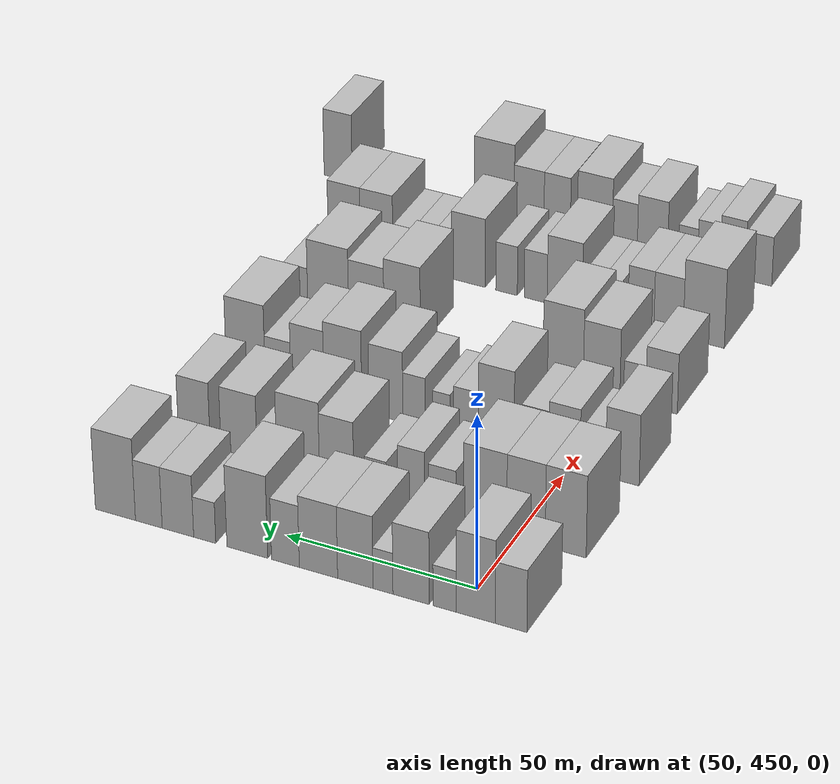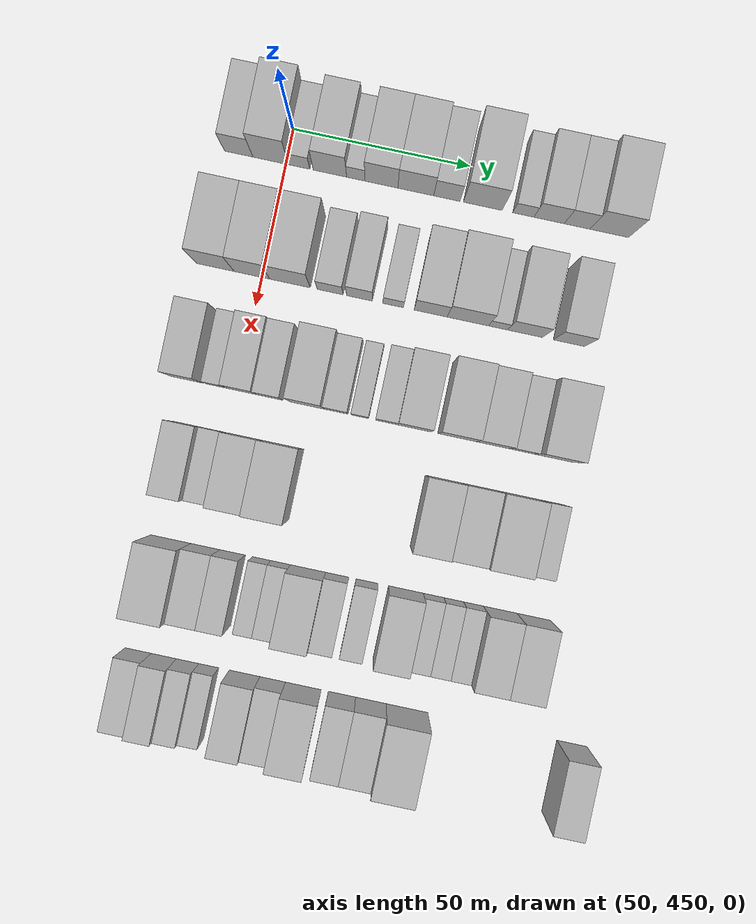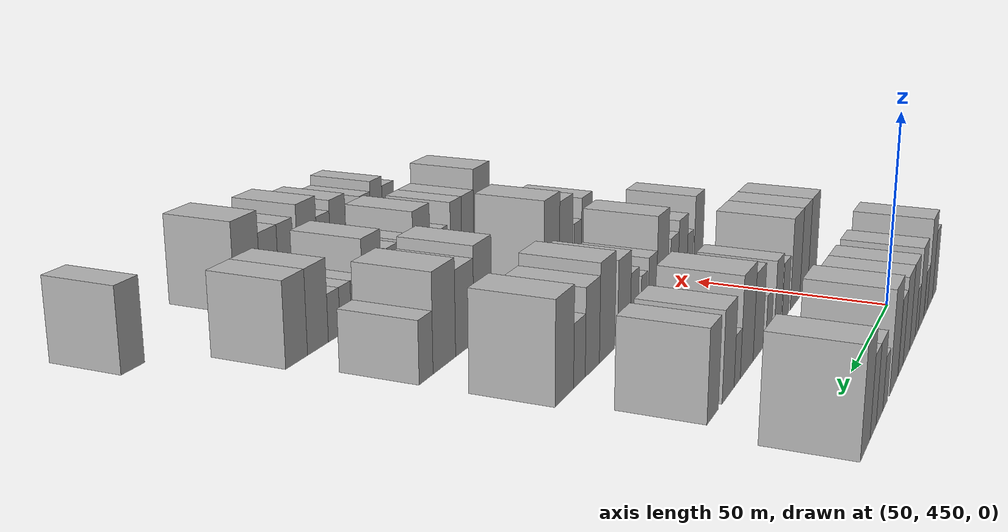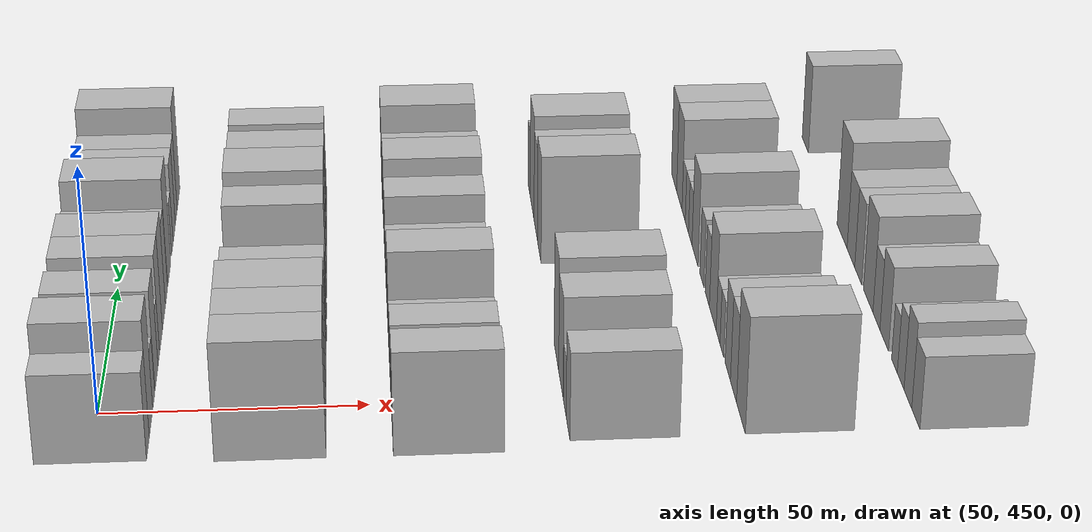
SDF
<sdf version="1.6">
 <world name="default">
  <model name="building_109">
   <static>1</static>
   <pose>50.0000 436.7194 0 0.000000 0.000000 0.000000</pose>
   <link name="link">
    <pose>0 0 9.00 0 0 0</pose>
    <collision name="collision"><geometry><box><size>20.0000 8.0384 18.0000</size></box></geometry></collision>
    <visual name="visual">
     <cast_shadows>0</cast_shadows>
     <geometry><box><size>20.0000 8.0384 18.0000</size></box></geometry>
     <material>
      <script>
       <uri>model://HANNAS_wall/materials/scripts</uri>
       <uri>model://HANNAS_wall/materials/textures</uri>
       <name>vrc/HANNAS_wall</name>
      </script>
     </material>
    </visual>
   </link>
  </model>
  <model name="building_110">
   <static>1</static>
   <pose>50.0000 445.7881 0 0.000000 0.000000 0.000000</pose>
   <link name="link">
    <pose>0 0 12.00 0 0 0</pose>
    <collision name="collision"><geometry><box><size>20.0000 10.0990 24.0000</size></box></geometry></collision>
    <visual name="visual">
     <cast_shadows>0</cast_shadows>
     <geometry><box><size>20.0000 10.0990 24.0000</size></box></geometry>
     <material>
      <script>
       <uri>model://HANNAS_wall/materials/scripts</uri>
       <uri>model://HANNAS_wall/materials/textures</uri>
       <name>vrc/HANNAS_wall</name>
      </script>
     </material>
    </visual>
   </link>
  </model>
  <model name="building_111">
   <static>1</static>
   <pose>50.0000 453.8127 0 0.000000 0.000000 0.000000</pose>
   <link name="link">
    <pose>0 0 6.00 0 0 0</pose>
    <collision name="collision"><geometry><box><size>20.0000 5.9501 12.0000</size></box></geometry></collision>
    <visual name="visual">
     <cast_shadows>0</cast_shadows>
     <geometry><box><size>20.0000 5.9501 12.0000</size></box></geometry>
     <material>
      <script>
       <uri>model://HANNAS_wall/materials/scripts</uri>
       <uri>model://HANNAS_wall/materials/textures</uri>
       <name>vrc/HANNAS_wall</name>
      </script>
     </material>
    </visual>
   </link>
  </model>
  <model name="building_112">
   <static>1</static>
   <pose>50.0000 462.4887 0 0.000000 0.000000 0.000000</pose>
   <link name="link">
    <pose>0 0 10.50 0 0 0</pose>
    <collision name="collision"><geometry><box><size>20.0000 9.4019 21.0000</size></box></geometry></collision>
    <visual name="visual">
     <cast_shadows>0</cast_shadows>
     <geometry><box><size>20.0000 9.4019 21.0000</size></box></geometry>
     <material>
      <script>
       <uri>model://HANNAS_wall/materials/scripts</uri>
       <uri>model://HANNAS_wall/materials/textures</uri>
       <name>vrc/HANNAS_wall</name>
      </script>
     </material>
    </visual>
   </link>
  </model>
  <model name="building_113">
   <static>1</static>
   <pose>50.0000 469.7795 0 0.000000 0.000000 0.000000</pose>
   <link name="link">
    <pose>0 0 6.00 0 0 0</pose>
    <collision name="collision"><geometry><box><size>20.0000 5.1796 12.0000</size></box></geometry></collision>
    <visual name="visual">
     <cast_shadows>0</cast_shadows>
     <geometry><box><size>20.0000 5.1796 12.0000</size></box></geometry>
     <material>
      <script>
       <uri>model://HANNAS_wall/materials/scripts</uri>
       <uri>model://HANNAS_wall/materials/textures</uri>
       <name>vrc/HANNAS_wall</name>
      </script>
     </material>
    </visual>
   </link>
  </model>
  <model name="building_114">
   <static>1</static>
   <pose>50.0000 477.0239 0 0.000000 0.000000 0.000000</pose>
   <link name="link">
    <pose>0 0 10.50 0 0 0</pose>
    <collision name="collision"><geometry><box><size>20.0000 9.3094 21.0000</size></box></geometry></collision>
    <visual name="visual">
     <cast_shadows>0</cast_shadows>
     <geometry><box><size>20.0000 9.3094 21.0000</size></box></geometry>
     <material>
      <script>
       <uri>model://HANNAS_wall/materials/scripts</uri>
       <uri>model://HANNAS_wall/materials/textures</uri>
       <name>vrc/HANNAS_wall</name>
      </script>
     </material>
    </visual>
   </link>
  </model>
  <model name="building_115">
   <static>1</static>
   <pose>50.0000 486.7383 0 0.000000 0.000000 0.000000</pose>
   <link name="link">
    <pose>0 0 10.50 0 0 0</pose>
    <collision name="collision"><geometry><box><size>20.0000 10.1193 21.0000</size></box></geometry></collision>
    <visual name="visual">
     <cast_shadows>0</cast_shadows>
     <geometry><box><size>20.0000 10.1193 21.0000</size></box></geometry>
     <material>
      <script>
       <uri>model://HANNAS_wall/materials/scripts</uri>
       <uri>model://HANNAS_wall/materials/textures</uri>
       <name>vrc/HANNAS_wall</name>
      </script>
     </material>
    </visual>
   </link>
  </model>
  <model name="building_116">
   <static>1</static>
   <pose>50.0000 495.4894 0 0.000000 0.000000 0.000000</pose>
   <link name="link">
    <pose>0 0 9.00 0 0 0</pose>
    <collision name="collision"><geometry><box><size>20.0000 7.3830 18.0000</size></box></geometry></collision>
    <visual name="visual">
     <cast_shadows>0</cast_shadows>
     <geometry><box><size>20.0000 7.3830 18.0000</size></box></geometry>
     <material>
      <script>
       <uri>model://HANNAS_wall/materials/scripts</uri>
       <uri>model://HANNAS_wall/materials/textures</uri>
       <name>vrc/HANNAS_wall</name>
      </script>
     </material>
    </visual>
   </link>
  </model>
  <model name="building_117">
   <static>1</static>
   <pose>50.0000 505.6539 0 0.000000 0.000000 0.000000</pose>
   <link name="link">
    <pose>0 0 12.00 0 0 0</pose>
    <collision name="collision"><geometry><box><size>20.0000 10.9459 24.0000</size></box></geometry></collision>
    <visual name="visual">
     <cast_shadows>0</cast_shadows>
     <geometry><box><size>20.0000 10.9459 24.0000</size></box></geometry>
     <material>
      <script>
       <uri>model://HANNAS_wall/materials/scripts</uri>
       <uri>model://HANNAS_wall/materials/textures</uri>
       <name>vrc/HANNAS_wall</name>
      </script>
     </material>
    </visual>
   </link>
  </model>
  <model name="building_118">
   <static>1</static>
   <pose>50.0000 517.1136 0 0.000000 0.000000 0.000000</pose>
   <link name="link">
    <pose>0 0 6.00 0 0 0</pose>
    <collision name="collision"><geometry><box><size>20.0000 5.9734 12.0000</size></box></geometry></collision>
    <visual name="visual">
     <cast_shadows>0</cast_shadows>
     <geometry><box><size>20.0000 5.9734 12.0000</size></box></geometry>
     <material>
      <script>
       <uri>model://HANNAS_wall/materials/scripts</uri>
       <uri>model://HANNAS_wall/materials/textures</uri>
       <name>vrc/HANNAS_wall</name>
      </script>
     </material>
    </visual>
   </link>
  </model>
  <model name="building_119">
   <static>1</static>
   <pose>50.0000 524.3731 0 0.000000 0.000000 0.000000</pose>
   <link name="link">
    <pose>0 0 9.00 0 0 0</pose>
    <collision name="collision"><geometry><box><size>20.0000 8.5457 18.0000</size></box></geometry></collision>
    <visual name="visual">
     <cast_shadows>0</cast_shadows>
     <geometry><box><size>20.0000 8.5457 18.0000</size></box></geometry>
     <material>
      <script>
       <uri>model://HANNAS_wall/materials/scripts</uri>
       <uri>model://HANNAS_wall/materials/textures</uri>
       <name>vrc/HANNAS_wall</name>
      </script>
     </material>
    </visual>
   </link>
  </model>
  <model name="building_120">
   <static>1</static>
   <pose>50.0000 532.2877 0 0.000000 0.000000 0.000000</pose>
   <link name="link">
    <pose>0 0 9.00 0 0 0</pose>
    <collision name="collision"><geometry><box><size>20.0000 7.2835 18.0000</size></box></geometry></collision>
    <visual name="visual">
     <cast_shadows>0</cast_shadows>
     <geometry><box><size>20.0000 7.2835 18.0000</size></box></geometry>
     <material>
      <script>
       <uri>model://HANNAS_wall/materials/scripts</uri>
       <uri>model://HANNAS_wall/materials/textures</uri>
       <name>vrc/HANNAS_wall</name>
      </script>
     </material>
    </visual>
   </link>
  </model>
  <model name="building_121">
   <static>1</static>
   <pose>50.0000 541.4183 0 0.000000 0.000000 0.000000</pose>
   <link name="link">
    <pose>0 0 12.00 0 0 0</pose>
    <collision name="collision"><geometry><box><size>20.0000 10.9776 24.0000</size></box></geometry></collision>
    <visual name="visual">
     <cast_shadows>0</cast_shadows>
     <geometry><box><size>20.0000 10.9776 24.0000</size></box></geometry>
     <material>
      <script>
       <uri>model://HANNAS_wall/materials/scripts</uri>
       <uri>model://HANNAS_wall/materials/textures</uri>
       <name>vrc/HANNAS_wall</name>
      </script>
     </material>
    </visual>
   </link>
  </model>
  <model name="building_231">
   <static>1</static>
   <pose>82.0000 436.9784 0 0.000000 0.000000 0.000000</pose>
   <link name="link">
    <pose>0 0 12.00 0 0 0</pose>
    <collision name="collision"><geometry><box><size>20.0000 10.6293 24.0000</size></box></geometry></collision>
    <visual name="visual">
     <cast_shadows>0</cast_shadows>
     <geometry><box><size>20.0000 10.6293 24.0000</size></box></geometry>
     <material>
      <script>
       <uri>model://HANNAS_wall/materials/scripts</uri>
       <uri>model://HANNAS_wall/materials/textures</uri>
       <name>vrc/HANNAS_wall</name>
      </script>
     </material>
    </visual>
   </link>
  </model>
  <model name="building_232">
   <static>1</static>
   <pose>82.0000 447.3363 0 0.000000 0.000000 0.000000</pose>
   <link name="link">
    <pose>0 0 12.00 0 0 0</pose>
    <collision name="collision"><geometry><box><size>20.0000 10.0864 24.0000</size></box></geometry></collision>
    <visual name="visual">
     <cast_shadows>0</cast_shadows>
     <geometry><box><size>20.0000 10.0864 24.0000</size></box></geometry>
     <material>
      <script>
       <uri>model://HANNAS_wall/materials/scripts</uri>
       <uri>model://HANNAS_wall/materials/textures</uri>
       <name>vrc/HANNAS_wall</name>
      </script>
     </material>
    </visual>
   </link>
  </model>
  <model name="building_233">
   <static>1</static>
   <pose>82.0000 458.0966 0 0.000000 0.000000 0.000000</pose>
   <link name="link">
    <pose>0 0 12.00 0 0 0</pose>
    <collision name="collision"><geometry><box><size>20.0000 11.4340 24.0000</size></box></geometry></collision>
    <visual name="visual">
     <cast_shadows>0</cast_shadows>
     <geometry><box><size>20.0000 11.4340 24.0000</size></box></geometry>
     <material>
      <script>
       <uri>model://HANNAS_wall/materials/scripts</uri>
       <uri>model://HANNAS_wall/materials/textures</uri>
       <name>vrc/HANNAS_wall</name>
      </script>
     </material>
    </visual>
   </link>
  </model>
  <model name="building_234">
   <static>1</static>
   <pose>82.0000 469.4426 0 0.000000 0.000000 0.000000</pose>
   <link name="link">
    <pose>0 0 7.50 0 0 0</pose>
    <collision name="collision"><geometry><box><size>20.0000 7.2582 15.0000</size></box></geometry></collision>
    <visual name="visual">
     <cast_shadows>0</cast_shadows>
     <geometry><box><size>20.0000 7.2582 15.0000</size></box></geometry>
     <material>
      <script>
       <uri>model://HANNAS_wall/materials/scripts</uri>
       <uri>model://HANNAS_wall/materials/textures</uri>
       <name>vrc/HANNAS_wall</name>
      </script>
     </material>
    </visual>
   </link>
  </model>
  <model name="building_235">
   <static>1</static>
   <pose>82.0000 477.6923 0 0.000000 0.000000 0.000000</pose>
   <link name="link">
    <pose>0 0 9.00 0 0 0</pose>
    <collision name="collision"><geometry><box><size>20.0000 7.2412 18.0000</size></box></geometry></collision>
    <visual name="visual">
     <cast_shadows>0</cast_shadows>
     <geometry><box><size>20.0000 7.2412 18.0000</size></box></geometry>
     <material>
      <script>
       <uri>model://HANNAS_wall/materials/scripts</uri>
       <uri>model://HANNAS_wall/materials/textures</uri>
       <name>vrc/HANNAS_wall</name>
      </script>
     </material>
    </visual>
   </link>
  </model>
  <model name="building_236">
   <static>1</static>
   <pose>82.0000 487.2114 0 0.000000 0.000000 0.000000</pose>
   <link name="link">
    <pose>0 0 6.00 0 0 0</pose>
    <collision name="collision"><geometry><box><size>20.0000 5.7970 12.0000</size></box></geometry></collision>
    <visual name="visual">
     <cast_shadows>0</cast_shadows>
     <geometry><box><size>20.0000 5.7970 12.0000</size></box></geometry>
     <material>
      <script>
       <uri>model://HANNAS_wall/materials/scripts</uri>
       <uri>model://HANNAS_wall/materials/textures</uri>
       <name>vrc/HANNAS_wall</name>
      </script>
     </material>
    </visual>
   </link>
  </model>
  <model name="building_237">
   <static>1</static>
   <pose>82.0000 497.7575 0 0.000000 0.000000 0.000000</pose>
   <link name="link">
    <pose>0 0 10.50 0 0 0</pose>
    <collision name="collision"><geometry><box><size>20.0000 9.2953 21.0000</size></box></geometry></collision>
    <visual name="visual">
     <cast_shadows>0</cast_shadows>
     <geometry><box><size>20.0000 9.2953 21.0000</size></box></geometry>
     <material>
      <script>
       <uri>model://HANNAS_wall/materials/scripts</uri>
       <uri>model://HANNAS_wall/materials/textures</uri>
       <name>vrc/HANNAS_wall</name>
      </script>
     </material>
    </visual>
   </link>
  </model>
  <model name="building_238">
   <static>1</static>
   <pose>82.0000 508.2361 0 0.000000 0.000000 0.000000</pose>
   <link name="link">
    <pose>0 0 12.00 0 0 0</pose>
    <collision name="collision"><geometry><box><size>20.0000 11.6618 24.0000</size></box></geometry></collision>
    <visual name="visual">
     <cast_shadows>0</cast_shadows>
     <geometry><box><size>20.0000 11.6618 24.0000</size></box></geometry>
     <material>
      <script>
       <uri>model://HANNAS_wall/materials/scripts</uri>
       <uri>model://HANNAS_wall/materials/textures</uri>
       <name>vrc/HANNAS_wall</name>
      </script>
     </material>
    </visual>
   </link>
  </model>
  <model name="building_239">
   <static>1</static>
   <pose>82.0000 516.7537 0 0.000000 0.000000 0.000000</pose>
   <link name="link">
    <pose>0 0 6.00 0 0 0</pose>
    <collision name="collision"><geometry><box><size>20.0000 5.3734 12.0000</size></box></geometry></collision>
    <visual name="visual">
     <cast_shadows>0</cast_shadows>
     <geometry><box><size>20.0000 5.3734 12.0000</size></box></geometry>
     <material>
      <script>
       <uri>model://HANNAS_wall/materials/scripts</uri>
       <uri>model://HANNAS_wall/materials/textures</uri>
       <name>vrc/HANNAS_wall</name>
      </script>
     </material>
    </visual>
   </link>
  </model>
  <model name="building_240">
   <static>1</static>
   <pose>82.0000 524.4398 0 0.000000 0.000000 0.000000</pose>
   <link name="link">
    <pose>0 0 10.50 0 0 0</pose>
    <collision name="collision"><geometry><box><size>20.0000 9.9989 21.0000</size></box></geometry></collision>
    <visual name="visual">
     <cast_shadows>0</cast_shadows>
     <geometry><box><size>20.0000 9.9989 21.0000</size></box></geometry>
     <material>
      <script>
       <uri>model://HANNAS_wall/materials/scripts</uri>
       <uri>model://HANNAS_wall/materials/textures</uri>
       <name>vrc/HANNAS_wall</name>
      </script>
     </material>
    </visual>
   </link>
  </model>
  <model name="building_241">
   <static>1</static>
   <pose>82.0000 536.8268 0 0.000000 0.000000 0.000000</pose>
   <link name="link">
    <pose>0 0 10.50 0 0 0</pose>
    <collision name="collision"><geometry><box><size>20.0000 8.7750 21.0000</size></box></geometry></collision>
    <visual name="visual">
     <cast_shadows>0</cast_shadows>
     <geometry><box><size>20.0000 8.7750 21.0000</size></box></geometry>
     <material>
      <script>
       <uri>model://HANNAS_wall/materials/scripts</uri>
       <uri>model://HANNAS_wall/materials/textures</uri>
       <name>vrc/HANNAS_wall</name>
      </script>
     </material>
    </visual>
   </link>
  </model>
  <model name="building_347">
   <static>1</static>
   <pose>114.0000 436.0106 0 0.000000 0.000000 0.000000</pose>
   <link name="link">
    <pose>0 0 10.50 0 0 0</pose>
    <collision name="collision"><geometry><box><size>20.0000 8.9211 21.0000</size></box></geometry></collision>
    <visual name="visual">
     <cast_shadows>0</cast_shadows>
     <geometry><box><size>20.0000 8.9211 21.0000</size></box></geometry>
     <material>
      <script>
       <uri>model://HANNAS_wall/materials/scripts</uri>
       <uri>model://HANNAS_wall/materials/textures</uri>
       <name>vrc/HANNAS_wall</name>
      </script>
     </material>
    </visual>
   </link>
  </model>
  <model name="building_348">
   <static>1</static>
   <pose>114.0000 444.3576 0 0.000000 0.000000 0.000000</pose>
   <link name="link">
    <pose>0 0 6.00 0 0 0</pose>
    <collision name="collision"><geometry><box><size>20.0000 5.7731 12.0000</size></box></geometry></collision>
    <visual name="visual">
     <cast_shadows>0</cast_shadows>
     <geometry><box><size>20.0000 5.7731 12.0000</size></box></geometry>
     <material>
      <script>
       <uri>model://HANNAS_wall/materials/scripts</uri>
       <uri>model://HANNAS_wall/materials/textures</uri>
       <name>vrc/HANNAS_wall</name>
      </script>
     </material>
    </visual>
   </link>
  </model>
  <model name="building_349">
   <static>1</static>
   <pose>114.0000 451.4254 0 0.000000 0.000000 0.000000</pose>
   <link name="link">
    <pose>0 0 9.00 0 0 0</pose>
    <collision name="collision"><geometry><box><size>20.0000 8.3625 18.0000</size></box></geometry></collision>
    <visual name="visual">
     <cast_shadows>0</cast_shadows>
     <geometry><box><size>20.0000 8.3625 18.0000</size></box></geometry>
     <material>
      <script>
       <uri>model://HANNAS_wall/materials/scripts</uri>
       <uri>model://HANNAS_wall/materials/textures</uri>
       <name>vrc/HANNAS_wall</name>
      </script>
     </material>
    </visual>
   </link>
  </model>
  <model name="building_350">
   <static>1</static>
   <pose>114.0000 459.2682 0 0.000000 0.000000 0.000000</pose>
   <link name="link">
    <pose>0 0 7.50 0 0 0</pose>
    <collision name="collision"><geometry><box><size>20.0000 7.3231 15.0000</size></box></geometry></collision>
    <visual name="visual">
     <cast_shadows>0</cast_shadows>
     <geometry><box><size>20.0000 7.3231 15.0000</size></box></geometry>
     <material>
      <script>
       <uri>model://HANNAS_wall/materials/scripts</uri>
       <uri>model://HANNAS_wall/materials/textures</uri>
       <name>vrc/HANNAS_wall</name>
      </script>
     </material>
    </visual>
   </link>
  </model>
  <model name="building_351">
   <static>1</static>
   <pose>114.0000 469.7411 0 0.000000 0.000000 0.000000</pose>
   <link name="link">
    <pose>0 0 12.00 0 0 0</pose>
    <collision name="collision"><geometry><box><size>20.0000 9.6227 24.0000</size></box></geometry></collision>
    <visual name="visual">
     <cast_shadows>0</cast_shadows>
     <geometry><box><size>20.0000 9.6227 24.0000</size></box></geometry>
     <material>
      <script>
       <uri>model://HANNAS_wall/materials/scripts</uri>
       <uri>model://HANNAS_wall/materials/textures</uri>
       <name>vrc/HANNAS_wall</name>
      </script>
     </material>
    </visual>
   </link>
  </model>
  <model name="building_352">
   <static>1</static>
   <pose>114.0000 477.9406 0 0.000000 0.000000 0.000000</pose>
   <link name="link">
    <pose>0 0 7.50 0 0 0</pose>
    <collision name="collision"><geometry><box><size>20.0000 6.7764 15.0000</size></box></geometry></collision>
    <visual name="visual">
     <cast_shadows>0</cast_shadows>
     <geometry><box><size>20.0000 6.7764 15.0000</size></box></geometry>
     <material>
      <script>
       <uri>model://HANNAS_wall/materials/scripts</uri>
       <uri>model://HANNAS_wall/materials/textures</uri>
       <name>vrc/HANNAS_wall</name>
      </script>
     </material>
    </visual>
   </link>
  </model>
  <model name="building_353">
   <static>1</static>
   <pose>114.0000 484.7339 0 0.000000 0.000000 0.000000</pose>
   <link name="link">
    <pose>0 0 6.00 0 0 0</pose>
    <collision name="collision"><geometry><box><size>20.0000 4.8100 12.0000</size></box></geometry></collision>
    <visual name="visual">
     <cast_shadows>0</cast_shadows>
     <geometry><box><size>20.0000 4.8100 12.0000</size></box></geometry>
     <material>
      <script>
       <uri>model://HANNAS_wall/materials/scripts</uri>
       <uri>model://HANNAS_wall/materials/textures</uri>
       <name>vrc/HANNAS_wall</name>
      </script>
     </material>
    </visual>
   </link>
  </model>
  <model name="building_354">
   <static>1</static>
   <pose>114.0000 492.2101 0 0.000000 0.000000 0.000000</pose>
   <link name="link">
    <pose>0 0 7.50 0 0 0</pose>
    <collision name="collision"><geometry><box><size>20.0000 6.1425 15.0000</size></box></geometry></collision>
    <visual name="visual">
     <cast_shadows>0</cast_shadows>
     <geometry><box><size>20.0000 6.1425 15.0000</size></box></geometry>
     <material>
      <script>
       <uri>model://HANNAS_wall/materials/scripts</uri>
       <uri>model://HANNAS_wall/materials/textures</uri>
       <name>vrc/HANNAS_wall</name>
      </script>
     </material>
    </visual>
   </link>
  </model>
  <model name="building_355">
   <static>1</static>
   <pose>114.0000 499.9525 0 0.000000 0.000000 0.000000</pose>
   <link name="link">
    <pose>0 0 10.50 0 0 0</pose>
    <collision name="collision"><geometry><box><size>20.0000 9.3423 21.0000</size></box></geometry></collision>
    <visual name="visual">
     <cast_shadows>0</cast_shadows>
     <geometry><box><size>20.0000 9.3423 21.0000</size></box></geometry>
     <material>
      <script>
       <uri>model://HANNAS_wall/materials/scripts</uri>
       <uri>model://HANNAS_wall/materials/textures</uri>
       <name>vrc/HANNAS_wall</name>
      </script>
     </material>
    </visual>
   </link>
  </model>
  <model name="building_356">
   <static>1</static>
   <pose>114.0000 511.8937 0 0.000000 0.000000 0.000000</pose>
   <link name="link">
    <pose>0 0 12.00 0 0 0</pose>
    <collision name="collision"><geometry><box><size>20.0000 10.5401 24.0000</size></box></geometry></collision>
    <visual name="visual">
     <cast_shadows>0</cast_shadows>
     <geometry><box><size>20.0000 10.5401 24.0000</size></box></geometry>
     <material>
      <script>
       <uri>model://HANNAS_wall/materials/scripts</uri>
       <uri>model://HANNAS_wall/materials/textures</uri>
       <name>vrc/HANNAS_wall</name>
      </script>
     </material>
    </visual>
   </link>
  </model>
  <model name="building_357">
   <static>1</static>
   <pose>114.0000 521.7892 0 0.000000 0.000000 0.000000</pose>
   <link name="link">
    <pose>0 0 10.50 0 0 0</pose>
    <collision name="collision"><geometry><box><size>20.0000 9.2511 21.0000</size></box></geometry></collision>
    <visual name="visual">
     <cast_shadows>0</cast_shadows>
     <geometry><box><size>20.0000 9.2511 21.0000</size></box></geometry>
     <material>
      <script>
       <uri>model://HANNAS_wall/materials/scripts</uri>
       <uri>model://HANNAS_wall/materials/textures</uri>
       <name>vrc/HANNAS_wall</name>
      </script>
     </material>
    </visual>
   </link>
  </model>
  <model name="building_358">
   <static>1</static>
   <pose>114.0000 530.0432 0 0.000000 0.000000 0.000000</pose>
   <link name="link">
    <pose>0 0 7.50 0 0 0</pose>
    <collision name="collision"><geometry><box><size>20.0000 7.2569 15.0000</size></box></geometry></collision>
    <visual name="visual">
     <cast_shadows>0</cast_shadows>
     <geometry><box><size>20.0000 7.2569 15.0000</size></box></geometry>
     <material>
      <script>
       <uri>model://HANNAS_wall/materials/scripts</uri>
       <uri>model://HANNAS_wall/materials/textures</uri>
       <name>vrc/HANNAS_wall</name>
      </script>
     </material>
    </visual>
   </link>
  </model>
  <model name="building_359">
   <static>1</static>
   <pose>114.0000 539.1803 0 0.000000 0.000000 0.000000</pose>
   <link name="link">
    <pose>0 0 12.00 0 0 0</pose>
    <collision name="collision"><geometry><box><size>20.0000 11.0173 24.0000</size></box></geometry></collision>
    <visual name="visual">
     <cast_shadows>0</cast_shadows>
     <geometry><box><size>20.0000 11.0173 24.0000</size></box></geometry>
     <material>
      <script>
       <uri>model://HANNAS_wall/materials/scripts</uri>
       <uri>model://HANNAS_wall/materials/textures</uri>
       <name>vrc/HANNAS_wall</name>
      </script>
     </material>
    </visual>
   </link>
  </model>
  <model name="building_457">
   <static>1</static>
   <pose>146.0000 439.0377 0 0.000000 0.000000 0.000000</pose>
   <link name="link">
    <pose>0 0 9.00 0 0 0</pose>
    <collision name="collision"><geometry><box><size>20.0000 8.5745 18.0000</size></box></geometry></collision>
    <visual name="visual">
     <cast_shadows>0</cast_shadows>
     <geometry><box><size>20.0000 8.5745 18.0000</size></box></geometry>
     <material>
      <script>
       <uri>model://HANNAS_wall/materials/scripts</uri>
       <uri>model://HANNAS_wall/materials/textures</uri>
       <name>vrc/HANNAS_wall</name>
      </script>
     </material>
    </visual>
   </link>
  </model>
  <model name="building_458">
   <static>1</static>
   <pose>146.0000 446.3223 0 0.000000 0.000000 0.000000</pose>
   <link name="link">
    <pose>0 0 6.00 0 0 0</pose>
    <collision name="collision"><geometry><box><size>20.0000 5.9947 12.0000</size></box></geometry></collision>
    <visual name="visual">
     <cast_shadows>0</cast_shadows>
     <geometry><box><size>20.0000 5.9947 12.0000</size></box></geometry>
     <material>
      <script>
       <uri>model://HANNAS_wall/materials/scripts</uri>
       <uri>model://HANNAS_wall/materials/textures</uri>
       <name>vrc/HANNAS_wall</name>
      </script>
     </material>
    </visual>
   </link>
  </model>
  <model name="building_459">
   <static>1</static>
   <pose>146.0000 455.3269 0 0.000000 0.000000 0.000000</pose>
   <link name="link">
    <pose>0 0 10.50 0 0 0</pose>
    <collision name="collision"><geometry><box><size>20.0000 10.0144 21.0000</size></box></geometry></collision>
    <visual name="visual">
     <cast_shadows>0</cast_shadows>
     <geometry><box><size>20.0000 10.0144 21.0000</size></box></geometry>
     <material>
      <script>
       <uri>model://HANNAS_wall/materials/scripts</uri>
       <uri>model://HANNAS_wall/materials/textures</uri>
       <name>vrc/HANNAS_wall</name>
      </script>
     </material>
    </visual>
   </link>
  </model>
  <model name="building_460">
   <static>1</static>
   <pose>146.0000 465.8670 0 0.000000 0.000000 0.000000</pose>
   <link name="link">
    <pose>0 0 12.00 0 0 0</pose>
    <collision name="collision"><geometry><box><size>20.0000 11.0659 24.0000</size></box></geometry></collision>
    <visual name="visual">
     <cast_shadows>0</cast_shadows>
     <geometry><box><size>20.0000 11.0659 24.0000</size></box></geometry>
     <material>
      <script>
       <uri>model://HANNAS_wall/materials/scripts</uri>
       <uri>model://HANNAS_wall/materials/textures</uri>
       <name>vrc/HANNAS_wall</name>
      </script>
     </material>
    </visual>
   </link>
  </model>
  <model name="building_461">
   <static>1</static>
   <pose>146.0000 510.8170 0 0.000000 0.000000 0.000000</pose>
   <link name="link">
    <pose>0 0 12.00 0 0 0</pose>
    <collision name="collision"><geometry><box><size>20.0000 10.2781 24.0000</size></box></geometry></collision>
    <visual name="visual">
     <cast_shadows>0</cast_shadows>
     <geometry><box><size>20.0000 10.2781 24.0000</size></box></geometry>
     <material>
      <script>
       <uri>model://HANNAS_wall/materials/scripts</uri>
       <uri>model://HANNAS_wall/materials/textures</uri>
       <name>vrc/HANNAS_wall</name>
      </script>
     </material>
    </visual>
   </link>
  </model>
  <model name="building_462">
   <static>1</static>
   <pose>146.0000 520.9902 0 0.000000 0.000000 0.000000</pose>
   <link name="link">
    <pose>0 0 10.50 0 0 0</pose>
    <collision name="collision"><geometry><box><size>20.0000 10.0684 21.0000</size></box></geometry></collision>
    <visual name="visual">
     <cast_shadows>0</cast_shadows>
     <geometry><box><size>20.0000 10.0684 21.0000</size></box></geometry>
     <material>
      <script>
       <uri>model://HANNAS_wall/materials/scripts</uri>
       <uri>model://HANNAS_wall/materials/textures</uri>
       <name>vrc/HANNAS_wall</name>
      </script>
     </material>
    </visual>
   </link>
  </model>
  <model name="building_463">
   <static>1</static>
   <pose>146.0000 531.8892 0 0.000000 0.000000 0.000000</pose>
   <link name="link">
    <pose>0 0 12.00 0 0 0</pose>
    <collision name="collision"><geometry><box><size>20.0000 11.7296 24.0000</size></box></geometry></collision>
    <visual name="visual">
     <cast_shadows>0</cast_shadows>
     <geometry><box><size>20.0000 11.7296 24.0000</size></box></geometry>
     <material>
      <script>
       <uri>model://HANNAS_wall/materials/scripts</uri>
       <uri>model://HANNAS_wall/materials/textures</uri>
       <name>vrc/HANNAS_wall</name>
      </script>
     </material>
    </visual>
   </link>
  </model>
  <model name="building_464">
   <static>1</static>
   <pose>146.0000 541.1923 0 0.000000 0.000000 0.000000</pose>
   <link name="link">
    <pose>0 0 7.50 0 0 0</pose>
    <collision name="collision"><geometry><box><size>20.0000 6.8765 15.0000</size></box></geometry></collision>
    <visual name="visual">
     <cast_shadows>0</cast_shadows>
     <geometry><box><size>20.0000 6.8765 15.0000</size></box></geometry>
     <material>
      <script>
       <uri>model://HANNAS_wall/materials/scripts</uri>
       <uri>model://HANNAS_wall/materials/textures</uri>
       <name>vrc/HANNAS_wall</name>
      </script>
     </material>
    </visual>
   </link>
  </model>
  <model name="building_573">
   <static>1</static>
   <pose>178.0000 440.6910 0 0.000000 0.000000 0.000000</pose>
   <link name="link">
    <pose>0 0 12.00 0 0 0</pose>
    <collision name="collision"><geometry><box><size>20.0000 11.3590 24.0000</size></box></geometry></collision>
    <visual name="visual">
     <cast_shadows>0</cast_shadows>
     <geometry><box><size>20.0000 11.3590 24.0000</size></box></geometry>
     <material>
      <script>
       <uri>model://HANNAS_wall/materials/scripts</uri>
       <uri>model://HANNAS_wall/materials/textures</uri>
       <name>vrc/HANNAS_wall</name>
      </script>
     </material>
    </visual>
   </link>
  </model>
  <model name="building_574">
   <static>1</static>
   <pose>178.0000 450.4486 0 0.000000 0.000000 0.000000</pose>
   <link name="link">
    <pose>0 0 9.00 0 0 0</pose>
    <collision name="collision"><geometry><box><size>20.0000 8.1562 18.0000</size></box></geometry></collision>
    <visual name="visual">
     <cast_shadows>0</cast_shadows>
     <geometry><box><size>20.0000 8.1562 18.0000</size></box></geometry>
     <material>
      <script>
       <uri>model://HANNAS_wall/materials/scripts</uri>
       <uri>model://HANNAS_wall/materials/textures</uri>
       <name>vrc/HANNAS_wall</name>
      </script>
     </material>
    </visual>
   </link>
  </model>
  <model name="building_575">
   <static>1</static>
   <pose>178.0000 458.1449 0 0.000000 0.000000 0.000000</pose>
   <link name="link">
    <pose>0 0 9.00 0 0 0</pose>
    <collision name="collision"><geometry><box><size>20.0000 7.2364 18.0000</size></box></geometry></collision>
    <visual name="visual">
     <cast_shadows>0</cast_shadows>
     <geometry><box><size>20.0000 7.2364 18.0000</size></box></geometry>
     <material>
      <script>
       <uri>model://HANNAS_wall/materials/scripts</uri>
       <uri>model://HANNAS_wall/materials/textures</uri>
       <name>vrc/HANNAS_wall</name>
      </script>
     </material>
    </visual>
   </link>
  </model>
  <model name="building_576">
   <static>1</static>
   <pose>178.0000 466.3684 0 0.000000 0.000000 0.000000</pose>
   <link name="link">
    <pose>0 0 6.00 0 0 0</pose>
    <collision name="collision"><geometry><box><size>20.0000 5.2106 12.0000</size></box></geometry></collision>
    <visual name="visual">
     <cast_shadows>0</cast_shadows>
     <geometry><box><size>20.0000 5.2106 12.0000</size></box></geometry>
     <material>
      <script>
       <uri>model://HANNAS_wall/materials/scripts</uri>
       <uri>model://HANNAS_wall/materials/textures</uri>
       <name>vrc/HANNAS_wall</name>
      </script>
     </material>
    </visual>
   </link>
  </model>
  <model name="building_577">
   <static>1</static>
   <pose>178.0000 471.7461 0 0.000000 0.000000 0.000000</pose>
   <link name="link">
    <pose>0 0 6.00 0 0 0</pose>
    <collision name="collision"><geometry><box><size>20.0000 5.5446 12.0000</size></box></geometry></collision>
    <visual name="visual">
     <cast_shadows>0</cast_shadows>
     <geometry><box><size>20.0000 5.5446 12.0000</size></box></geometry>
     <material>
      <script>
       <uri>model://HANNAS_wall/materials/scripts</uri>
       <uri>model://HANNAS_wall/materials/textures</uri>
       <name>vrc/HANNAS_wall</name>
      </script>
     </material>
    </visual>
   </link>
  </model>
  <model name="building_578">
   <static>1</static>
   <pose>178.0000 479.4972 0 0.000000 0.000000 0.000000</pose>
   <link name="link">
    <pose>0 0 10.50 0 0 0</pose>
    <collision name="collision"><geometry><box><size>20.0000 9.9577 21.0000</size></box></geometry></collision>
    <visual name="visual">
     <cast_shadows>0</cast_shadows>
     <geometry><box><size>20.0000 9.9577 21.0000</size></box></geometry>
     <material>
      <script>
       <uri>model://HANNAS_wall/materials/scripts</uri>
       <uri>model://HANNAS_wall/materials/textures</uri>
       <name>vrc/HANNAS_wall</name>
      </script>
     </material>
    </visual>
   </link>
  </model>
  <model name="building_579">
   <static>1</static>
   <pose>178.0000 487.7282 0 0.000000 0.000000 0.000000</pose>
   <link name="link">
    <pose>0 0 7.50 0 0 0</pose>
    <collision name="collision"><geometry><box><size>20.0000 6.5042 15.0000</size></box></geometry></collision>
    <visual name="visual">
     <cast_shadows>0</cast_shadows>
     <geometry><box><size>20.0000 6.5042 15.0000</size></box></geometry>
     <material>
      <script>
       <uri>model://HANNAS_wall/materials/scripts</uri>
       <uri>model://HANNAS_wall/materials/textures</uri>
       <name>vrc/HANNAS_wall</name>
      </script>
     </material>
    </visual>
   </link>
  </model>
  <model name="building_580">
   <static>1</static>
   <pose>178.0000 496.0620 0 0.000000 0.000000 0.000000</pose>
   <link name="link">
    <pose>0 0 7.50 0 0 0</pose>
    <collision name="collision"><geometry><box><size>20.0000 6.1635 15.0000</size></box></geometry></collision>
    <visual name="visual">
     <cast_shadows>0</cast_shadows>
     <geometry><box><size>20.0000 6.1635 15.0000</size></box></geometry>
     <material>
      <script>
       <uri>model://HANNAS_wall/materials/scripts</uri>
       <uri>model://HANNAS_wall/materials/textures</uri>
       <name>vrc/HANNAS_wall</name>
      </script>
     </material>
    </visual>
   </link>
  </model>
  <model name="building_581">
   <static>1</static>
   <pose>178.0000 507.0440 0 0.000000 0.000000 0.000000</pose>
   <link name="link">
    <pose>0 0 10.50 0 0 0</pose>
    <collision name="collision"><geometry><box><size>20.0000 9.8003 21.0000</size></box></geometry></collision>
    <visual name="visual">
     <cast_shadows>0</cast_shadows>
     <geometry><box><size>20.0000 9.8003 21.0000</size></box></geometry>
     <material>
      <script>
       <uri>model://HANNAS_wall/materials/scripts</uri>
       <uri>model://HANNAS_wall/materials/textures</uri>
       <name>vrc/HANNAS_wall</name>
      </script>
     </material>
    </visual>
   </link>
  </model>
  <model name="building_582">
   <static>1</static>
   <pose>178.0000 514.8527 0 0.000000 0.000000 0.000000</pose>
   <link name="link">
    <pose>0 0 6.00 0 0 0</pose>
    <collision name="collision"><geometry><box><size>20.0000 5.8171 12.0000</size></box></geometry></collision>
    <visual name="visual">
     <cast_shadows>0</cast_shadows>
     <geometry><box><size>20.0000 5.8171 12.0000</size></box></geometry>
     <material>
      <script>
       <uri>model://HANNAS_wall/materials/scripts</uri>
       <uri>model://HANNAS_wall/materials/textures</uri>
       <name>vrc/HANNAS_wall</name>
      </script>
     </material>
    </visual>
   </link>
  </model>
  <model name="building_583">
   <static>1</static>
   <pose>178.0000 520.5361 0 0.000000 0.000000 0.000000</pose>
   <link name="link">
    <pose>0 0 6.00 0 0 0</pose>
    <collision name="collision"><geometry><box><size>20.0000 5.5497 12.0000</size></box></geometry></collision>
    <visual name="visual">
     <cast_shadows>0</cast_shadows>
     <geometry><box><size>20.0000 5.5497 12.0000</size></box></geometry>
     <material>
      <script>
       <uri>model://HANNAS_wall/materials/scripts</uri>
       <uri>model://HANNAS_wall/materials/textures</uri>
       <name>vrc/HANNAS_wall</name>
      </script>
     </material>
    </visual>
   </link>
  </model>
  <model name="building_584">
   <static>1</static>
   <pose>178.0000 526.0983 0 0.000000 0.000000 0.000000</pose>
   <link name="link">
    <pose>0 0 6.00 0 0 0</pose>
    <collision name="collision"><geometry><box><size>20.0000 5.5749 12.0000</size></box></geometry></collision>
    <visual name="visual">
     <cast_shadows>0</cast_shadows>
     <geometry><box><size>20.0000 5.5749 12.0000</size></box></geometry>
     <material>
      <script>
       <uri>model://HANNAS_wall/materials/scripts</uri>
       <uri>model://HANNAS_wall/materials/textures</uri>
       <name>vrc/HANNAS_wall</name>
      </script>
     </material>
    </visual>
   </link>
  </model>
  <model name="building_585">
   <static>1</static>
   <pose>178.0000 533.6266 0 0.000000 0.000000 0.000000</pose>
   <link name="link">
    <pose>0 0 10.50 0 0 0</pose>
    <collision name="collision"><geometry><box><size>20.0000 9.4818 21.0000</size></box></geometry></collision>
    <visual name="visual">
     <cast_shadows>0</cast_shadows>
     <geometry><box><size>20.0000 9.4818 21.0000</size></box></geometry>
     <material>
      <script>
       <uri>model://HANNAS_wall/materials/scripts</uri>
       <uri>model://HANNAS_wall/materials/textures</uri>
       <name>vrc/HANNAS_wall</name>
      </script>
     </material>
    </visual>
   </link>
  </model>
  <model name="building_586">
   <static>1</static>
   <pose>178.0000 543.1014 0 0.000000 0.000000 0.000000</pose>
   <link name="link">
    <pose>0 0 10.50 0 0 0</pose>
    <collision name="collision"><geometry><box><size>20.0000 9.4677 21.0000</size></box></geometry></collision>
    <visual name="visual">
     <cast_shadows>0</cast_shadows>
     <geometry><box><size>20.0000 9.4677 21.0000</size></box></geometry>
     <material>
      <script>
       <uri>model://HANNAS_wall/materials/scripts</uri>
       <uri>model://HANNAS_wall/materials/textures</uri>
       <name>vrc/HANNAS_wall</name>
      </script>
     </material>
    </visual>
   </link>
  </model>
  <model name="building_697">
   <static>1</static>
   <pose>210.0000 438.2777 0 0.000000 0.000000 0.000000</pose>
   <link name="link">
    <pose>0 0 7.50 0 0 0</pose>
    <collision name="collision"><geometry><box><size>20.0000 7.4000 15.0000</size></box></geometry></collision>
    <visual name="visual">
     <cast_shadows>0</cast_shadows>
     <geometry><box><size>20.0000 7.4000 15.0000</size></box></geometry>
     <material>
      <script>
       <uri>model://HANNAS_wall/materials/scripts</uri>
       <uri>model://HANNAS_wall/materials/textures</uri>
       <name>vrc/HANNAS_wall</name>
      </script>
     </material>
    </visual>
   </link>
  </model>
  <model name="building_698">
   <static>1</static>
   <pose>210.0000 445.5859 0 0.000000 0.000000 0.000000</pose>
   <link name="link">
    <pose>0 0 9.00 0 0 0</pose>
    <collision name="collision"><geometry><box><size>20.0000 7.2163 18.0000</size></box></geometry></collision>
    <visual name="visual">
     <cast_shadows>0</cast_shadows>
     <geometry><box><size>20.0000 7.2163 18.0000</size></box></geometry>
     <material>
      <script>
       <uri>model://HANNAS_wall/materials/scripts</uri>
       <uri>model://HANNAS_wall/materials/textures</uri>
       <name>vrc/HANNAS_wall</name>
      </script>
     </material>
    </visual>
   </link>
  </model>
  <model name="building_699">
   <static>1</static>
   <pose>210.0000 452.3484 0 0.000000 0.000000 0.000000</pose>
   <link name="link">
    <pose>0 0 7.50 0 0 0</pose>
    <collision name="collision"><geometry><box><size>20.0000 6.3087 15.0000</size></box></geometry></collision>
    <visual name="visual">
     <cast_shadows>0</cast_shadows>
     <geometry><box><size>20.0000 6.3087 15.0000</size></box></geometry>
     <material>
      <script>
       <uri>model://HANNAS_wall/materials/scripts</uri>
       <uri>model://HANNAS_wall/materials/textures</uri>
       <name>vrc/HANNAS_wall</name>
      </script>
     </material>
    </visual>
   </link>
  </model>
  <model name="building_700">
   <static>1</static>
   <pose>210.0000 458.2710 0 0.000000 0.000000 0.000000</pose>
   <link name="link">
    <pose>0 0 6.00 0 0 0</pose>
    <collision name="collision"><geometry><box><size>20.0000 5.5365 12.0000</size></box></geometry></collision>
    <visual name="visual">
     <cast_shadows>0</cast_shadows>
     <geometry><box><size>20.0000 5.5365 12.0000</size></box></geometry>
     <material>
      <script>
       <uri>model://HANNAS_wall/materials/scripts</uri>
       <uri>model://HANNAS_wall/materials/textures</uri>
       <name>vrc/HANNAS_wall</name>
      </script>
     </material>
    </visual>
   </link>
  </model>
  <model name="building_701">
   <static>1</static>
   <pose>210.0000 468.3695 0 0.000000 0.000000 0.000000</pose>
   <link name="link">
    <pose>0 0 9.00 0 0 0</pose>
    <collision name="collision"><geometry><box><size>20.0000 8.6606 18.0000</size></box></geometry></collision>
    <visual name="visual">
     <cast_shadows>0</cast_shadows>
     <geometry><box><size>20.0000 8.6606 18.0000</size></box></geometry>
     <material>
      <script>
       <uri>model://HANNAS_wall/materials/scripts</uri>
       <uri>model://HANNAS_wall/materials/textures</uri>
       <name>vrc/HANNAS_wall</name>
      </script>
     </material>
    </visual>
   </link>
  </model>
  <model name="building_702">
   <static>1</static>
   <pose>210.0000 476.2980 0 0.000000 0.000000 0.000000</pose>
   <link name="link">
    <pose>0 0 7.50 0 0 0</pose>
    <collision name="collision"><geometry><box><size>20.0000 7.1962 15.0000</size></box></geometry></collision>
    <visual name="visual">
     <cast_shadows>0</cast_shadows>
     <geometry><box><size>20.0000 7.1962 15.0000</size></box></geometry>
     <material>
      <script>
       <uri>model://HANNAS_wall/materials/scripts</uri>
       <uri>model://HANNAS_wall/materials/textures</uri>
       <name>vrc/HANNAS_wall</name>
      </script>
     </material>
    </visual>
   </link>
  </model>
  <model name="building_703">
   <static>1</static>
   <pose>210.0000 484.9426 0 0.000000 0.000000 0.000000</pose>
   <link name="link">
    <pose>0 0 10.50 0 0 0</pose>
    <collision name="collision"><geometry><box><size>20.0000 10.0931 21.0000</size></box></geometry></collision>
    <visual name="visual">
     <cast_shadows>0</cast_shadows>
     <geometry><box><size>20.0000 10.0931 21.0000</size></box></geometry>
     <material>
      <script>
       <uri>model://HANNAS_wall/materials/scripts</uri>
       <uri>model://HANNAS_wall/materials/textures</uri>
       <name>vrc/HANNAS_wall</name>
      </script>
     </material>
    </visual>
   </link>
  </model>
  <model name="building_704">
   <static>1</static>
   <pose>210.0000 495.8255 0 0.000000 0.000000 0.000000</pose>
   <link name="link">
    <pose>0 0 9.00 0 0 0</pose>
    <collision name="collision"><geometry><box><size>20.0000 7.6726 18.0000</size></box></geometry></collision>
    <visual name="visual">
     <cast_shadows>0</cast_shadows>
     <geometry><box><size>20.0000 7.6726 18.0000</size></box></geometry>
     <material>
      <script>
       <uri>model://HANNAS_wall/materials/scripts</uri>
       <uri>model://HANNAS_wall/materials/textures</uri>
       <name>vrc/HANNAS_wall</name>
      </script>
     </material>
    </visual>
   </link>
  </model>
  <model name="building_705">
   <static>1</static>
   <pose>210.0000 504.0025 0 0.000000 0.000000 0.000000</pose>
   <link name="link">
    <pose>0 0 9.00 0 0 0</pose>
    <collision name="collision"><geometry><box><size>20.0000 8.6814 18.0000</size></box></geometry></collision>
    <visual name="visual">
     <cast_shadows>0</cast_shadows>
     <geometry><box><size>20.0000 8.6814 18.0000</size></box></geometry>
     <material>
      <script>
       <uri>model://HANNAS_wall/materials/scripts</uri>
       <uri>model://HANNAS_wall/materials/textures</uri>
       <name>vrc/HANNAS_wall</name>
      </script>
     </material>
    </visual>
   </link>
  </model>
  <model name="building_706">
   <static>1</static>
   <pose>210.0000 514.2071 0 0.000000 0.000000 0.000000</pose>
   <link name="link">
    <pose>0 0 12.00 0 0 0</pose>
    <collision name="collision"><geometry><box><size>20.0000 11.7279 24.0000</size></box></geometry></collision>
    <visual name="visual">
     <cast_shadows>0</cast_shadows>
     <geometry><box><size>20.0000 11.7279 24.0000</size></box></geometry>
     <material>
      <script>
       <uri>model://HANNAS_wall/materials/scripts</uri>
       <uri>model://HANNAS_wall/materials/textures</uri>
       <name>vrc/HANNAS_wall</name>
      </script>
     </material>
    </visual>
   </link>
  </model>
  <model name="building_707">
   <static>1</static>
   <pose>210.0000 560.7972 0 0.000000 0.000000 0.000000</pose>
   <link name="link">
    <pose>0 0 10.50 0 0 0</pose>
    <collision name="collision"><geometry><box><size>20.0000 8.4841 21.0000</size></box></geometry></collision>
    <visual name="visual">
     <cast_shadows>0</cast_shadows>
     <geometry><box><size>20.0000 8.4841 21.0000</size></box></geometry>
     <material>
      <script>
       <uri>model://HANNAS_wall/materials/scripts</uri>
       <uri>model://HANNAS_wall/materials/textures</uri>
       <name>vrc/HANNAS_wall</name>
      </script>
     </material>
    </visual>
   </link>
  </model>
 </world>
</sdf>
